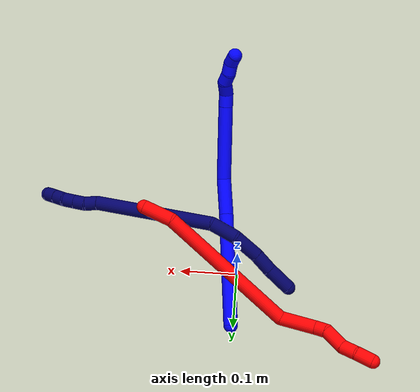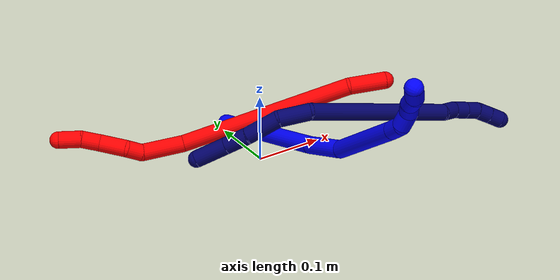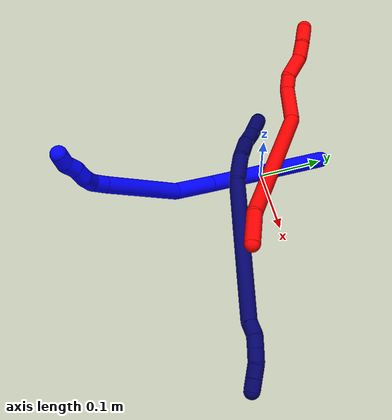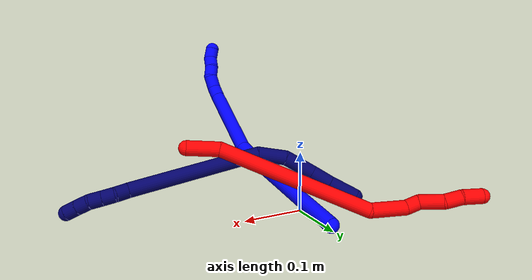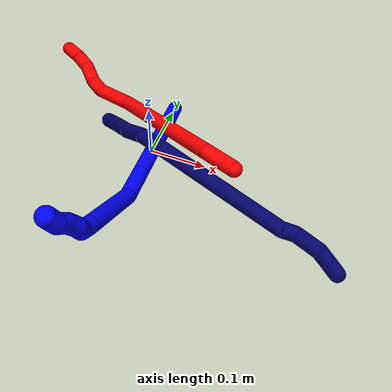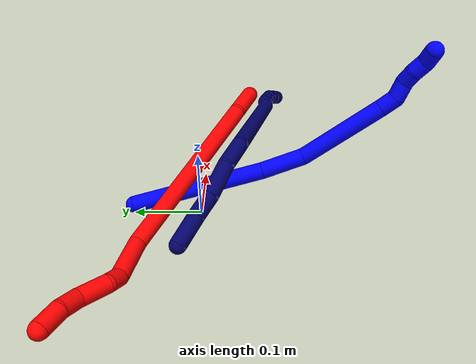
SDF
<sdf version="1.7">
 <world name="default">
  <model name="photoneo_s_sensor">
   <static>1</static>
   <pose>0 0 2 1.57079 1.57079 3.14159</pose>
   <link name="link">
    <inertial><mass>0.1</mass></inertial>
    <sensor name="sensor" type="depth">
     <update_rate>30</update_rate>
     <camera>
      <horizontal_fov>1.22</horizontal_fov>
      <image><width>1920</width><height>1200</height><format>B8G8R8</format></image>
      <clip><near>0.1</near><far>2</far></clip>
      <depth_camera><output>points</output></depth_camera>
     </camera>
     <plugin name="camera_plugin" filename="libgazebo_ros_depth_camera.so">
      <baseline>0.2</baseline>
      <alwaysOn>1</alwaysOn>
      <updateRate>0.0</updateRate>
      <cameraName>camera_ir</cameraName>
      <imageTopicName>/camera/color/image_raw</imageTopicName>
      <cameraInfoTopicName>/camera/color/camera_info</cameraInfoTopicName>
      <depthImageTopicName>/camera/depth/image_raw</depthImageTopicName>
      <depthImageCameraInfoTopicName>/camera/depth/camera_info</depthImageCameraInfoTopicName>
      <pointCloudTopicName>/camera/depth/points</pointCloudTopicName>
      <frameName>fr_optical</frameName>
      <pointCloudCutoff>0.1</pointCloudCutoff>
      <pointCloudCutoffMax>2.0</pointCloudCutoffMax>
      <distortionK1>0</distortionK1>
      <distortionK2>0</distortionK2>
      <distortionK3>0</distortionK3>
      <distortionT1>0</distortionT1>
      <distortionT2>0</distortionT2>
      <CxPrime>0</CxPrime>
      <Cx>0</Cx>
      <Cy>0</Cy>
      <focalLength>0</focalLength>
      <hackBaseline>0</hackBaseline>
     </plugin>
    </sensor>
   </link>
  </model>
  <model name="bin">
   <static>1</static>
   <link name="bottom">
    <collision name="collision-bottom">
     <pose>0 0 -0.01 0 -0 0</pose>
     <geometry><box><size>0.8 0.6 0.02</size></box></geometry>
     <surface>
      <friction><ode><mu>100</mu><mu2>100</mu2></ode></friction>
      <contact><collide_bitmask>65535</collide_bitmask></contact>
     </surface>
    </collision>
   </link>
   <link name="west_wall">
    <collision name="collision-west_wall">
     <pose>-0.41 0 0.1 0 -0 0</pose>
     <geometry><box><size>0.02 0.6 0.2</size></box></geometry>
     <surface>
      <friction><ode><mu>100</mu><mu2>100</mu2></ode></friction>
      <contact><collide_bitmask>65535</collide_bitmask></contact>
     </surface>
    </collision>
   </link>
   <link name="east_wall">
    <collision name="collision-east_wall">
     <pose>0.41 0 0.1 0 -0 0</pose>
     <geometry><box><size>0.02 0.6 0.2</size></box></geometry>
     <surface>
      <friction><ode><mu>100</mu><mu2>100</mu2></ode></friction>
      <contact><collide_bitmask>65535</collide_bitmask></contact>
     </surface>
    </collision>
   </link>
   <link name="south_wall">
    <collision name="collision-south_wall">
     <pose>0 -0.31 0.1 0 -0 0</pose>
     <geometry><box><size>0.8 0.02 0.2</size></box></geometry>
     <surface>
      <friction><ode><mu>100</mu><mu2>100</mu2></ode></friction>
      <contact><collide_bitmask>65535</collide_bitmask></contact>
     </surface>
    </collision>
   </link>
   <link name="north_wall">
    <collision name="collision-north_wall">
     <pose>0 0.31 0.1 0 -0 0</pose>
     <geometry><box><size>0.8 0.02 0.2</size></box></geometry>
     <surface>
      <friction><ode><mu>100</mu><mu2>100</mu2></ode></friction>
      <contact><collide_bitmask>65535</collide_bitmask></contact>
     </surface>
    </collision>
   </link>
  </model>
  <model name="1">
   <static>0</static>
   <link name="1">
    <collision name="collision-cylinder-e_1_1_4">
     <pose>0.005605 -0.043584 0.088507 0.457573 0.056751 0.013219</pose>
     <geometry><cylinder><radius>0.0125</radius><length>0.197631</length></cylinder></geometry>
     <surface>
      <friction><ode><mu>1.16</mu><mu2>1.16</mu2><slip1>0</slip1><slip2>0</slip2></ode></friction>
      <contact><ode><kp>1e+06</kp><kd>1</kd><max_vel>0</max_vel><min_depth>0.001</min_depth></ode></contact>
     </surface>
    </collision>
    <visual name="visual-cylinder-e_1_1_4">
     <pose>0.005605 -0.043584 0.088507 0.457573 0.056751 0.013219</pose>
     <geometry><cylinder><radius>0.0125</radius><length>0.197631</length></cylinder></geometry>
     <material><ambient>0 0 1 1</ambient></material>
    </visual>
    <collision name="collision-cylinder-e_2_4_5">
     <pose>0.0116 -0.103086 0.204728 0.521403 0.012227 0.003262</pose>
     <geometry><cylinder><radius>0.0125</radius><length>0.063925</length></cylinder></geometry>
     <surface>
      <friction><ode><mu>1.16</mu><mu2>1.16</mu2><slip1>0</slip1><slip2>0</slip2></ode></friction>
      <contact><ode><kp>1e+06</kp><kd>1</kd><max_vel>0</max_vel><min_depth>0.001</min_depth></ode></contact>
     </surface>
    </collision>
    <visual name="visual-cylinder-e_2_4_5">
     <pose>0.0116 -0.103086 0.204728 0.521403 0.012227 0.003262</pose>
     <geometry><cylinder><radius>0.0125</radius><length>0.063925</length></cylinder></geometry>
     <material><ambient>0 0 1 1</ambient></material>
    </visual>
    <collision name="collision-cylinder-e_3_5_6">
     <pose>0.012405 -0.168196 0.274987 0.857707 0.006362 0.002909</pose>
     <geometry><cylinder><radius>0.0125</radius><length>0.130078</length></cylinder></geometry>
     <surface>
      <friction><ode><mu>1.16</mu><mu2>1.16</mu2><slip1>0</slip1><slip2>0</slip2></ode></friction>
      <contact><ode><kp>1e+06</kp><kd>1</kd><max_vel>0</max_vel><min_depth>0.001</min_depth></ode></contact>
     </surface>
    </collision>
    <visual name="visual-cylinder-e_3_5_6">
     <pose>0.012405 -0.168196 0.274987 0.857707 0.006362 0.002909</pose>
     <geometry><cylinder><radius>0.0125</radius><length>0.130078</length></cylinder></geometry>
     <material><ambient>0 0 1 1</ambient></material>
    </visual>
    <collision name="collision-cylinder-e_4_6_7">
     <pose>0.012909 -0.226732 0.324757 0.912668 0.007678 0.003769</pose>
     <geometry><cylinder><radius>0.0125</radius><length>0.023624</length></cylinder></geometry>
     <surface>
      <friction><ode><mu>1.16</mu><mu2>1.16</mu2><slip1>0</slip1><slip2>0</slip2></ode></friction>
      <contact><ode><kp>1e+06</kp><kd>1</kd><max_vel>0</max_vel><min_depth>0.001</min_depth></ode></contact>
     </surface>
    </collision>
    <visual name="visual-cylinder-e_4_6_7">
     <pose>0.012909 -0.226732 0.324757 0.912668 0.007678 0.003769</pose>
     <geometry><cylinder><radius>0.0125</radius><length>0.023624</length></cylinder></geometry>
     <material><ambient>0 0 1 1</ambient></material>
    </visual>
    <collision name="collision-cylinder-e_5_7_8">
     <pose>0.009827 -0.247631 0.334619 1.34636 -0.261558 -0.209011</pose>
     <geometry><cylinder><radius>0.0125</radius><length>0.024539</length></cylinder></geometry>
     <surface>
      <friction><ode><mu>1.16</mu><mu2>1.16</mu2><slip1>0</slip1><slip2>0</slip2></ode></friction>
      <contact><ode><kp>1e+06</kp><kd>1</kd><max_vel>0</max_vel><min_depth>0.001</min_depth></ode></contact>
     </surface>
    </collision>
    <visual name="visual-cylinder-e_5_7_8">
     <pose>0.009827 -0.247631 0.334619 1.34636 -0.261558 -0.209011</pose>
     <geometry><cylinder><radius>0.0125</radius><length>0.024539</length></cylinder></geometry>
     <material><ambient>0 0 1 1</ambient></material>
    </visual>
    <collision name="collision-cylinder-e_6_8_9">
     <pose>0.008468 -0.268985 0.338785 1.4161 0.18087 0.154962</pose>
     <geometry><cylinder><radius>0.0125</radius><length>0.020163</length></cylinder></geometry>
     <surface>
      <friction><ode><mu>1.16</mu><mu2>1.16</mu2><slip1>0</slip1><slip2>0</slip2></ode></friction>
      <contact><ode><kp>1e+06</kp><kd>1</kd><max_vel>0</max_vel><min_depth>0.001</min_depth></ode></contact>
     </surface>
    </collision>
    <visual name="visual-cylinder-e_6_8_9">
     <pose>0.008468 -0.268985 0.338785 1.4161 0.18087 0.154962</pose>
     <geometry><cylinder><radius>0.0125</radius><length>0.020163</length></cylinder></geometry>
     <material><ambient>0 0 1 1</ambient></material>
    </visual>
    <collision name="collision-cylinder-e_7_9_10">
     <pose>0.011176 -0.287893 0.344382 1.15071 0.089415 0.058012</pose>
     <geometry><cylinder><radius>0.0125</radius><length>0.020035</length></cylinder></geometry>
     <surface>
      <friction><ode><mu>1.16</mu><mu2>1.16</mu2><slip1>0</slip1><slip2>0</slip2></ode></friction>
      <contact><ode><kp>1e+06</kp><kd>1</kd><max_vel>0</max_vel><min_depth>0.001</min_depth></ode></contact>
     </surface>
    </collision>
    <visual name="visual-cylinder-e_7_9_10">
     <pose>0.011176 -0.287893 0.344382 1.15071 0.089415 0.058012</pose>
     <geometry><cylinder><radius>0.0125</radius><length>0.020035</length></cylinder></geometry>
     <material><ambient>0 0 1 1</ambient></material>
    </visual>
    <collision name="collision-cylinder-e_8_10_2">
     <pose>0.013759 -0.306862 0.34852 1.56382 0.169615 0.168442</pose>
     <geometry><cylinder><radius>0.0125</radius><length>0.020006</length></cylinder></geometry>
     <surface>
      <friction><ode><mu>1.16</mu><mu2>1.16</mu2><slip1>0</slip1><slip2>0</slip2></ode></friction>
      <contact><ode><kp>1e+06</kp><kd>1</kd><max_vel>0</max_vel><min_depth>0.001</min_depth></ode></contact>
     </surface>
    </collision>
    <visual name="visual-cylinder-e_8_10_2">
     <pose>0.013759 -0.306862 0.34852 1.56382 0.169615 0.168442</pose>
     <geometry><cylinder><radius>0.0125</radius><length>0.020006</length></cylinder></geometry>
     <material><ambient>0 0 1 1</ambient></material>
    </visual>
    <collision name="collision-sphere-2">
     <pose>0.015448 -0.316722 0.348589 0 -0 0</pose>
     <geometry><sphere><radius>0.0125</radius></sphere></geometry>
     <surface>
      <friction><ode><mu>1.16</mu><mu2>1.16</mu2><slip1>0</slip1><slip2>0</slip2></ode></friction>
      <contact><ode><kp>1e+06</kp><kd>1</kd><max_vel>0</max_vel><min_depth>0.001</min_depth></ode></contact>
     </surface>
    </collision>
    <visual name="visual-sphere-2">
     <pose>0.015448 -0.316722 0.348589 0 -0 0</pose>
     <geometry><sphere><radius>0.0125</radius></sphere></geometry>
     <material><ambient>0 0 1 1</ambient></material>
    </visual>
    <collision name="collision-sphere-10">
     <pose>0.012071 -0.297003 0.348452 0 -0 0</pose>
     <geometry><sphere><radius>0.0125</radius></sphere></geometry>
     <surface>
      <friction><ode><mu>1.16</mu><mu2>1.16</mu2><slip1>0</slip1><slip2>0</slip2></ode></friction>
      <contact><ode><kp>1e+06</kp><kd>1</kd><max_vel>0</max_vel><min_depth>0.001</min_depth></ode></contact>
     </surface>
    </collision>
    <visual name="visual-sphere-10">
     <pose>0.012071 -0.297003 0.348452 0 -0 0</pose>
     <geometry><sphere><radius>0.0125</radius></sphere></geometry>
     <material><ambient>0 0 1 1</ambient></material>
    </visual>
    <collision name="collision-sphere-9">
     <pose>0.010282 -0.278783 0.340313 0 -0 0</pose>
     <geometry><sphere><radius>0.0125</radius></sphere></geometry>
     <surface>
      <friction><ode><mu>1.16</mu><mu2>1.16</mu2><slip1>0</slip1><slip2>0</slip2></ode></friction>
      <contact><ode><kp>1e+06</kp><kd>1</kd><max_vel>0</max_vel><min_depth>0.001</min_depth></ode></contact>
     </surface>
    </collision>
    <visual name="visual-sphere-9">
     <pose>0.010282 -0.278783 0.340313 0 -0 0</pose>
     <geometry><sphere><radius>0.0125</radius></sphere></geometry>
     <material><ambient>0 0 1 1</ambient></material>
    </visual>
    <collision name="collision-sphere-4">
     <pose>0.01121 -0.087167 0.177015 0 -0 0</pose>
     <geometry><sphere><radius>0.0125</radius></sphere></geometry>
     <surface>
      <friction><ode><mu>1.16</mu><mu2>1.16</mu2><slip1>0</slip1><slip2>0</slip2></ode></friction>
      <contact><ode><kp>1e+06</kp><kd>1</kd><max_vel>0</max_vel><min_depth>0.001</min_depth></ode></contact>
     </surface>
    </collision>
    <visual name="visual-sphere-4">
     <pose>0.01121 -0.087167 0.177015 0 -0 0</pose>
     <geometry><sphere><radius>0.0125</radius></sphere></geometry>
     <material><ambient>0 0 1 1</ambient></material>
    </visual>
    <collision name="collision-sphere-1">
     <geometry><sphere><radius>0.0125</radius></sphere></geometry>
     <surface>
      <friction><ode><mu>1.16</mu><mu2>1.16</mu2><slip1>0</slip1><slip2>0</slip2></ode></friction>
      <contact><ode><kp>1e+06</kp><kd>1</kd><max_vel>0</max_vel><min_depth>0.001</min_depth></ode></contact>
     </surface>
    </collision>
    <visual name="visual-sphere-1">
     <geometry><sphere><radius>0.0125</radius></sphere></geometry>
     <material><ambient>0 0 1 1</ambient></material>
    </visual>
    <collision name="collision-sphere-8">
     <pose>0.006655 -0.259186 0.337257 0 -0 0</pose>
     <geometry><sphere><radius>0.0125</radius></sphere></geometry>
     <surface>
      <friction><ode><mu>1.16</mu><mu2>1.16</mu2><slip1>0</slip1><slip2>0</slip2></ode></friction>
      <contact><ode><kp>1e+06</kp><kd>1</kd><max_vel>0</max_vel><min_depth>0.001</min_depth></ode></contact>
     </surface>
    </collision>
    <visual name="visual-sphere-8">
     <pose>0.006655 -0.259186 0.337257 0 -0 0</pose>
     <geometry><sphere><radius>0.0125</radius></sphere></geometry>
     <material><ambient>0 0 1 1</ambient></material>
    </visual>
    <collision name="collision-sphere-5">
     <pose>0.011991 -0.119005 0.232441 0 -0 0</pose>
     <geometry><sphere><radius>0.0125</radius></sphere></geometry>
     <surface>
      <friction><ode><mu>1.16</mu><mu2>1.16</mu2><slip1>0</slip1><slip2>0</slip2></ode></friction>
      <contact><ode><kp>1e+06</kp><kd>1</kd><max_vel>0</max_vel><min_depth>0.001</min_depth></ode></contact>
     </surface>
    </collision>
    <visual name="visual-sphere-5">
     <pose>0.011991 -0.119005 0.232441 0 -0 0</pose>
     <geometry><sphere><radius>0.0125</radius></sphere></geometry>
     <material><ambient>0 0 1 1</ambient></material>
    </visual>
    <collision name="collision-sphere-6">
     <pose>0.012819 -0.217387 0.317533 0 -0 0</pose>
     <geometry><sphere><radius>0.0125</radius></sphere></geometry>
     <surface>
      <friction><ode><mu>1.16</mu><mu2>1.16</mu2><slip1>0</slip1><slip2>0</slip2></ode></friction>
      <contact><ode><kp>1e+06</kp><kd>1</kd><max_vel>0</max_vel><min_depth>0.001</min_depth></ode></contact>
     </surface>
    </collision>
    <visual name="visual-sphere-6">
     <pose>0.012819 -0.217387 0.317533 0 -0 0</pose>
     <geometry><sphere><radius>0.0125</radius></sphere></geometry>
     <material><ambient>0 0 1 1</ambient></material>
    </visual>
    <collision name="collision-sphere-7">
     <pose>0.013 -0.236077 0.331982 0 -0 0</pose>
     <geometry><sphere><radius>0.0125</radius></sphere></geometry>
     <surface>
      <friction><ode><mu>1.16</mu><mu2>1.16</mu2><slip1>0</slip1><slip2>0</slip2></ode></friction>
      <contact><ode><kp>1e+06</kp><kd>1</kd><max_vel>0</max_vel><min_depth>0.001</min_depth></ode></contact>
     </surface>
    </collision>
    <visual name="visual-sphere-7">
     <pose>0.013 -0.236077 0.331982 0 -0 0</pose>
     <geometry><sphere><radius>0.0125</radius></sphere></geometry>
     <material><ambient>0 0 1 1</ambient></material>
    </visual>
    <inertial>
     <pose>0.009358 -0.13169 0.20587 0 -0 0</pose>
     <mass>0.5</mass>
     <inertia>
      <ixx>0.000882</ixx>
      <ixy>0</ixy>
      <ixz>0</ixz>
      <iyy>0.000716</iyy>
      <iyz>0</iyz>
      <izz>0.000438</izz>
     </inertia>
    </inertial>
   </link>
   <pose>0.004101 0.100392 0.012304 -1.7726 0.231234 -2.91738</pose>
  </model>
  <model name="2">
   <static>0</static>
   <link name="2">
    <collision name="collision-cylinder-e_1_1_4">
     <pose>-0.001919 -0.000688 0.026696 0.025771 -0.071733 -0.000925</pose>
     <geometry><cylinder><radius>0.0125</radius><length>0.053548</length></cylinder></geometry>
     <surface>
      <friction><ode><mu>1.16</mu><mu2>1.16</mu2><slip1>0</slip1><slip2>0</slip2></ode></friction>
      <contact><ode><kp>1e+06</kp><kd>1</kd><max_vel>0</max_vel><min_depth>0.001</min_depth></ode></contact>
     </surface>
    </collision>
    <visual name="visual-cylinder-e_1_1_4">
     <pose>-0.001919 -0.000688 0.026696 0.025771 -0.071733 -0.000925</pose>
     <geometry><cylinder><radius>0.0125</radius><length>0.053548</length></cylinder></geometry>
     <material><ambient>1 0 0 1</ambient></material>
    </visual>
    <collision name="collision-cylinder-e_2_4_5">
     <pose>-0.028869 0.039243 0.173476 -0.326175 -0.194951 0.032178</pose>
     <geometry><cylinder><radius>0.0125</radius><length>0.258431</length></cylinder></geometry>
     <surface>
      <friction><ode><mu>1.16</mu><mu2>1.16</mu2><slip1>0</slip1><slip2>0</slip2></ode></friction>
      <contact><ode><kp>1e+06</kp><kd>1</kd><max_vel>0</max_vel><min_depth>0.001</min_depth></ode></contact>
     </surface>
    </collision>
    <visual name="visual-cylinder-e_2_4_5">
     <pose>-0.028869 0.039243 0.173476 -0.326175 -0.194951 0.032178</pose>
     <geometry><cylinder><radius>0.0125</radius><length>0.258431</length></cylinder></geometry>
     <material><ambient>1 0 0 1</ambient></material>
    </visual>
    <collision name="collision-cylinder-e_3_5_6">
     <pose>-0.058161 0.073931 0.324587 0.18889 -0.134073 -0.012719</pose>
     <geometry><cylinder><radius>0.0125</radius><length>0.063749</length></cylinder></geometry>
     <surface>
      <friction><ode><mu>1.16</mu><mu2>1.16</mu2><slip1>0</slip1><slip2>0</slip2></ode></friction>
      <contact><ode><kp>1e+06</kp><kd>1</kd><max_vel>0</max_vel><min_depth>0.001</min_depth></ode></contact>
     </surface>
    </collision>
    <visual name="visual-cylinder-e_3_5_6">
     <pose>-0.058161 0.073931 0.324587 0.18889 -0.134073 -0.012719</pose>
     <geometry><cylinder><radius>0.0125</radius><length>0.063749</length></cylinder></geometry>
     <material><ambient>1 0 0 1</ambient></material>
    </visual>
    <collision name="collision-cylinder-e_4_6_7">
     <pose>-0.058785 0.064869 0.366249 0.286298 0.317004 0.04607</pose>
     <geometry><cylinder><radius>0.0125</radius><length>0.023337</length></cylinder></geometry>
     <surface>
      <friction><ode><mu>1.16</mu><mu2>1.16</mu2><slip1>0</slip1><slip2>0</slip2></ode></friction>
      <contact><ode><kp>1e+06</kp><kd>1</kd><max_vel>0</max_vel><min_depth>0.001</min_depth></ode></contact>
     </surface>
    </collision>
    <visual name="visual-cylinder-e_4_6_7">
     <pose>-0.058785 0.064869 0.366249 0.286298 0.317004 0.04607</pose>
     <geometry><cylinder><radius>0.0125</radius><length>0.023337</length></cylinder></geometry>
     <material><ambient>1 0 0 1</ambient></material>
    </visual>
    <collision name="collision-cylinder-e_5_7_8">
     <pose>-0.048575 0.065769 0.395602 -0.212131 0.330642 -0.035522</pose>
     <geometry><cylinder><radius>0.0125</radius><length>0.040486</length></cylinder></geometry>
     <surface>
      <friction><ode><mu>1.16</mu><mu2>1.16</mu2><slip1>0</slip1><slip2>0</slip2></ode></friction>
      <contact><ode><kp>1e+06</kp><kd>1</kd><max_vel>0</max_vel><min_depth>0.001</min_depth></ode></contact>
     </surface>
    </collision>
    <visual name="visual-cylinder-e_5_7_8">
     <pose>-0.048575 0.065769 0.395602 -0.212131 0.330642 -0.035522</pose>
     <geometry><cylinder><radius>0.0125</radius><length>0.040486</length></cylinder></geometry>
     <material><ambient>1 0 0 1</ambient></material>
    </visual>
    <collision name="collision-cylinder-e_6_8_9">
     <pose>-0.038167 0.067947 0.427633 0.138282 0.278048 0.01938</pose>
     <geometry><cylinder><radius>0.0125</radius><length>0.027957</length></cylinder></geometry>
     <surface>
      <friction><ode><mu>1.16</mu><mu2>1.16</mu2><slip1>0</slip1><slip2>0</slip2></ode></friction>
      <contact><ode><kp>1e+06</kp><kd>1</kd><max_vel>0</max_vel><min_depth>0.001</min_depth></ode></contact>
     </surface>
    </collision>
    <visual name="visual-cylinder-e_6_8_9">
     <pose>-0.038167 0.067947 0.427633 0.138282 0.278048 0.01938</pose>
     <geometry><cylinder><radius>0.0125</radius><length>0.027957</length></cylinder></geometry>
     <material><ambient>1 0 0 1</ambient></material>
    </visual>
    <collision name="collision-cylinder-e_7_9_2">
     <pose>-0.033447 0.065468 0.457156 0.038614 0.054362 0.00105</pose>
     <geometry><cylinder><radius>0.0125</radius><length>0.032493</length></cylinder></geometry>
     <surface>
      <friction><ode><mu>1.16</mu><mu2>1.16</mu2><slip1>0</slip1><slip2>0</slip2></ode></friction>
      <contact><ode><kp>1e+06</kp><kd>1</kd><max_vel>0</max_vel><min_depth>0.001</min_depth></ode></contact>
     </surface>
    </collision>
    <visual name="visual-cylinder-e_7_9_2">
     <pose>-0.033447 0.065468 0.457156 0.038614 0.054362 0.00105</pose>
     <geometry><cylinder><radius>0.0125</radius><length>0.032493</length></cylinder></geometry>
     <material><ambient>1 0 0 1</ambient></material>
    </visual>
    <collision name="collision-sphere-2">
     <pose>-0.032565 0.064842 0.473366 0 -0 0</pose>
     <geometry><sphere><radius>0.0125</radius></sphere></geometry>
     <surface>
      <friction><ode><mu>1.16</mu><mu2>1.16</mu2><slip1>0</slip1><slip2>0</slip2></ode></friction>
      <contact><ode><kp>1e+06</kp><kd>1</kd><max_vel>0</max_vel><min_depth>0.001</min_depth></ode></contact>
     </surface>
    </collision>
    <visual name="visual-sphere-2">
     <pose>-0.032565 0.064842 0.473366 0 -0 0</pose>
     <geometry><sphere><radius>0.0125</radius></sphere></geometry>
     <material><ambient>1 0 0 1</ambient></material>
    </visual>
    <collision name="collision-sphere-9">
     <pose>-0.03433 0.066094 0.440946 0 -0 0</pose>
     <geometry><sphere><radius>0.0125</radius></sphere></geometry>
     <surface>
      <friction><ode><mu>1.16</mu><mu2>1.16</mu2><slip1>0</slip1><slip2>0</slip2></ode></friction>
      <contact><ode><kp>1e+06</kp><kd>1</kd><max_vel>0</max_vel><min_depth>0.001</min_depth></ode></contact>
     </surface>
    </collision>
    <visual name="visual-sphere-9">
     <pose>-0.03433 0.066094 0.440946 0 -0 0</pose>
     <geometry><sphere><radius>0.0125</radius></sphere></geometry>
     <material><ambient>1 0 0 1</ambient></material>
    </visual>
    <collision name="collision-sphere-4">
     <pose>-0.003838 -0.001376 0.053392 0 -0 0</pose>
     <geometry><sphere><radius>0.0125</radius></sphere></geometry>
     <surface>
      <friction><ode><mu>1.16</mu><mu2>1.16</mu2><slip1>0</slip1><slip2>0</slip2></ode></friction>
      <contact><ode><kp>1e+06</kp><kd>1</kd><max_vel>0</max_vel><min_depth>0.001</min_depth></ode></contact>
     </surface>
    </collision>
    <visual name="visual-sphere-4">
     <pose>-0.003838 -0.001376 0.053392 0 -0 0</pose>
     <geometry><sphere><radius>0.0125</radius></sphere></geometry>
     <material><ambient>1 0 0 1</ambient></material>
    </visual>
    <collision name="collision-sphere-1">
     <geometry><sphere><radius>0.0125</radius></sphere></geometry>
     <surface>
      <friction><ode><mu>1.16</mu><mu2>1.16</mu2><slip1>0</slip1><slip2>0</slip2></ode></friction>
      <contact><ode><kp>1e+06</kp><kd>1</kd><max_vel>0</max_vel><min_depth>0.001</min_depth></ode></contact>
     </surface>
    </collision>
    <visual name="visual-sphere-1">
     <geometry><sphere><radius>0.0125</radius></sphere></geometry>
     <material><ambient>1 0 0 1</ambient></material>
    </visual>
    <collision name="collision-sphere-8">
     <pose>-0.042004 0.0698 0.41432 0 -0 0</pose>
     <geometry><sphere><radius>0.0125</radius></sphere></geometry>
     <surface>
      <friction><ode><mu>1.16</mu><mu2>1.16</mu2><slip1>0</slip1><slip2>0</slip2></ode></friction>
      <contact><ode><kp>1e+06</kp><kd>1</kd><max_vel>0</max_vel><min_depth>0.001</min_depth></ode></contact>
     </surface>
    </collision>
    <visual name="visual-sphere-8">
     <pose>-0.042004 0.0698 0.41432 0 -0 0</pose>
     <geometry><sphere><radius>0.0125</radius></sphere></geometry>
     <material><ambient>1 0 0 1</ambient></material>
    </visual>
    <collision name="collision-sphere-5">
     <pose>-0.053901 0.079862 0.293561 0 -0 0</pose>
     <geometry><sphere><radius>0.0125</radius></sphere></geometry>
     <surface>
      <friction><ode><mu>1.16</mu><mu2>1.16</mu2><slip1>0</slip1><slip2>0</slip2></ode></friction>
      <contact><ode><kp>1e+06</kp><kd>1</kd><max_vel>0</max_vel><min_depth>0.001</min_depth></ode></contact>
     </surface>
    </collision>
    <visual name="visual-sphere-5">
     <pose>-0.053901 0.079862 0.293561 0 -0 0</pose>
     <geometry><sphere><radius>0.0125</radius></sphere></geometry>
     <material><ambient>1 0 0 1</ambient></material>
    </visual>
    <collision name="collision-sphere-6">
     <pose>-0.062422 0.068 0.355613 0 -0 0</pose>
     <geometry><sphere><radius>0.0125</radius></sphere></geometry>
     <surface>
      <friction><ode><mu>1.16</mu><mu2>1.16</mu2><slip1>0</slip1><slip2>0</slip2></ode></friction>
      <contact><ode><kp>1e+06</kp><kd>1</kd><max_vel>0</max_vel><min_depth>0.001</min_depth></ode></contact>
     </surface>
    </collision>
    <visual name="visual-sphere-6">
     <pose>-0.062422 0.068 0.355613 0 -0 0</pose>
     <geometry><sphere><radius>0.0125</radius></sphere></geometry>
     <material><ambient>1 0 0 1</ambient></material>
    </visual>
    <collision name="collision-sphere-7">
     <pose>-0.055147 0.061737 0.376885 0 -0 0</pose>
     <geometry><sphere><radius>0.0125</radius></sphere></geometry>
     <surface>
      <friction><ode><mu>1.16</mu><mu2>1.16</mu2><slip1>0</slip1><slip2>0</slip2></ode></friction>
      <contact><ode><kp>1e+06</kp><kd>1</kd><max_vel>0</max_vel><min_depth>0.001</min_depth></ode></contact>
     </surface>
    </collision>
    <visual name="visual-sphere-7">
     <pose>-0.055147 0.061737 0.376885 0 -0 0</pose>
     <geometry><sphere><radius>0.0125</radius></sphere></geometry>
     <material><ambient>1 0 0 1</ambient></material>
    </visual>
    <inertial>
     <pose>-0.033527 0.046042 0.236652 0 -0 0</pose>
     <mass>0.5</mass>
     <inertia>
      <ixx>0.001517</ixx>
      <ixy>0</ixy>
      <ixz>0</ixz>
      <iyy>0.001479</iyy>
      <iyz>0</iyz>
      <izz>-0.000133</izz>
     </inertia>
    </inertial>
   </link>
   <pose>0.167825 -0.072355 0.111537 -1.61716 -0.945583 1.17309</pose>
  </model>
  <model name="7">
   <static>0</static>
   <link name="7">
    <collision name="collision-cylinder-e_1_1_4">
     <pose>-3.5e-05 2.2e-05 0.024087 -0.000903 -0.001441 1e-06</pose>
     <geometry><cylinder><radius>0.0125</radius><length>0.048174</length></cylinder></geometry>
     <surface>
      <friction><ode><mu>1.16</mu><mu2>1.16</mu2><slip1>0</slip1><slip2>0</slip2></ode></friction>
      <contact><ode><kp>1e+06</kp><kd>1</kd><max_vel>0</max_vel><min_depth>0.001</min_depth></ode></contact>
     </surface>
    </collision>
    <visual name="visual-cylinder-e_1_1_4">
     <pose>-3.5e-05 2.2e-05 0.024087 -0.000903 -0.001441 1e-06</pose>
     <geometry><cylinder><radius>0.0125</radius><length>0.048174</length></cylinder></geometry>
     <material><ambient>0.003922 0 0.403922 1</ambient></material>
    </visual>
    <collision name="collision-cylinder-e_2_4_5">
     <pose>-0.001276 -0.000567 0.065485 0.035231 -0.069522 -0.001225</pose>
     <geometry><cylinder><radius>0.0125</radius><length>0.034729</length></cylinder></geometry>
     <surface>
      <friction><ode><mu>1.16</mu><mu2>1.16</mu2><slip1>0</slip1><slip2>0</slip2></ode></friction>
      <contact><ode><kp>1e+06</kp><kd>1</kd><max_vel>0</max_vel><min_depth>0.001</min_depth></ode></contact>
     </surface>
    </collision>
    <visual name="visual-cylinder-e_2_4_5">
     <pose>-0.001276 -0.000567 0.065485 0.035231 -0.069522 -0.001225</pose>
     <geometry><cylinder><radius>0.0125</radius><length>0.034729</length></cylinder></geometry>
     <material><ambient>0.003922 0 0.403922 1</ambient></material>
    </visual>
    <collision name="collision-cylinder-e_3_5_6">
     <pose>-0.002678 0.001108 0.108175 -0.089801 -0.007684 0.000345</pose>
     <geometry><cylinder><radius>0.0125</radius><length>0.050963</length></cylinder></geometry>
     <surface>
      <friction><ode><mu>1.16</mu><mu2>1.16</mu2><slip1>0</slip1><slip2>0</slip2></ode></friction>
      <contact><ode><kp>1e+06</kp><kd>1</kd><max_vel>0</max_vel><min_depth>0.001</min_depth></ode></contact>
     </surface>
    </collision>
    <visual name="visual-cylinder-e_3_5_6">
     <pose>-0.002678 0.001108 0.108175 -0.089801 -0.007684 0.000345</pose>
     <geometry><cylinder><radius>0.0125</radius><length>0.050963</length></cylinder></geometry>
     <material><ambient>0.003922 0 0.403922 1</ambient></material>
    </visual>
    <collision name="collision-cylinder-e_4_6_7">
     <pose>0.005026 0.002774 0.155587 0.028087 0.344088 0.004881</pose>
     <geometry><cylinder><radius>0.0125</radius><length>0.046832</length></cylinder></geometry>
     <surface>
      <friction><ode><mu>1.16</mu><mu2>1.16</mu2><slip1>0</slip1><slip2>0</slip2></ode></friction>
      <contact><ode><kp>1e+06</kp><kd>1</kd><max_vel>0</max_vel><min_depth>0.001</min_depth></ode></contact>
     </surface>
    </collision>
    <visual name="visual-cylinder-e_4_6_7">
     <pose>0.005026 0.002774 0.155587 0.028087 0.344088 0.004881</pose>
     <geometry><cylinder><radius>0.0125</radius><length>0.046832</length></cylinder></geometry>
     <material><ambient>0.003922 0 0.403922 1</ambient></material>
    </visual>
    <collision name="collision-cylinder-e_5_7_8">
     <pose>0.087922 0.000757 0.255966 0.017848 0.763494 0.007165</pose>
     <geometry><cylinder><radius>0.0125</radius><length>0.216927</length></cylinder></geometry>
     <surface>
      <friction><ode><mu>1.16</mu><mu2>1.16</mu2><slip1>0</slip1><slip2>0</slip2></ode></friction>
      <contact><ode><kp>1e+06</kp><kd>1</kd><max_vel>0</max_vel><min_depth>0.001</min_depth></ode></contact>
     </surface>
    </collision>
    <visual name="visual-cylinder-e_5_7_8">
     <pose>0.087922 0.000757 0.255966 0.017848 0.763494 0.007165</pose>
     <geometry><cylinder><radius>0.0125</radius><length>0.216927</length></cylinder></geometry>
     <material><ambient>0.003922 0 0.403922 1</ambient></material>
    </visual>
    <collision name="collision-cylinder-e_6_8_9">
     <pose>0.170845 0.002325 0.341055 -0.414356 0.821857 -0.182668</pose>
     <geometry><cylinder><radius>0.0125</radius><length>0.021643</length></cylinder></geometry>
     <surface>
      <friction><ode><mu>1.16</mu><mu2>1.16</mu2><slip1>0</slip1><slip2>0</slip2></ode></friction>
      <contact><ode><kp>1e+06</kp><kd>1</kd><max_vel>0</max_vel><min_depth>0.001</min_depth></ode></contact>
     </surface>
    </collision>
    <visual name="visual-cylinder-e_6_8_9">
     <pose>0.170845 0.002325 0.341055 -0.414356 0.821857 -0.182668</pose>
     <geometry><cylinder><radius>0.0125</radius><length>0.021643</length></cylinder></geometry>
     <material><ambient>0.003922 0 0.403922 1</ambient></material>
    </visual>
    <collision name="collision-cylinder-e_7_9_10">
     <pose>0.185801 0.004899 0.355142 0.053414 0.762989 0.021431</pose>
     <geometry><cylinder><radius>0.0125</radius><length>0.020347</length></cylinder></geometry>
     <surface>
      <friction><ode><mu>1.16</mu><mu2>1.16</mu2><slip1>0</slip1><slip2>0</slip2></ode></friction>
      <contact><ode><kp>1e+06</kp><kd>1</kd><max_vel>0</max_vel><min_depth>0.001</min_depth></ode></contact>
     </surface>
    </collision>
    <visual name="visual-cylinder-e_7_9_10">
     <pose>0.185801 0.004899 0.355142 0.053414 0.762989 0.021431</pose>
     <geometry><cylinder><radius>0.0125</radius><length>0.020347</length></cylinder></geometry>
     <material><ambient>0.003922 0 0.403922 1</ambient></material>
    </visual>
    <collision name="collision-cylinder-e_8_10_11">
     <pose>0.199675 0.004016 0.369831 0.066629 0.748888 0.026192</pose>
     <geometry><cylinder><radius>0.0125</radius><length>0.020103</length></cylinder></geometry>
     <surface>
      <friction><ode><mu>1.16</mu><mu2>1.16</mu2><slip1>0</slip1><slip2>0</slip2></ode></friction>
      <contact><ode><kp>1e+06</kp><kd>1</kd><max_vel>0</max_vel><min_depth>0.001</min_depth></ode></contact>
     </surface>
    </collision>
    <visual name="visual-cylinder-e_8_10_11">
     <pose>0.199675 0.004016 0.369831 0.066629 0.748888 0.026192</pose>
     <geometry><cylinder><radius>0.0125</radius><length>0.020103</length></cylinder></geometry>
     <material><ambient>0.003922 0 0.403922 1</ambient></material>
    </visual>
    <collision name="collision-cylinder-e_9_11_12">
     <pose>0.213898 0.000257 0.383281 0.491593 0.817239 0.2164</pose>
     <geometry><cylinder><radius>0.0125</radius><length>0.020239</length></cylinder></geometry>
     <surface>
      <friction><ode><mu>1.16</mu><mu2>1.16</mu2><slip1>0</slip1><slip2>0</slip2></ode></friction>
      <contact><ode><kp>1e+06</kp><kd>1</kd><max_vel>0</max_vel><min_depth>0.001</min_depth></ode></contact>
     </surface>
    </collision>
    <visual name="visual-cylinder-e_9_11_12">
     <pose>0.213898 0.000257 0.383281 0.491593 0.817239 0.2164</pose>
     <geometry><cylinder><radius>0.0125</radius><length>0.020239</length></cylinder></geometry>
     <material><ambient>0.003922 0 0.403922 1</ambient></material>
    </visual>
    <collision name="collision-cylinder-e_10_12_2">
     <pose>0.22871 -0.006349 0.395221 0.519516 0.835418 0.23482</pose>
     <geometry><cylinder><radius>0.0125</radius><length>0.020044</length></cylinder></geometry>
     <surface>
      <friction><ode><mu>1.16</mu><mu2>1.16</mu2><slip1>0</slip1><slip2>0</slip2></ode></friction>
      <contact><ode><kp>1e+06</kp><kd>1</kd><max_vel>0</max_vel><min_depth>0.001</min_depth></ode></contact>
     </surface>
    </collision>
    <visual name="visual-cylinder-e_10_12_2">
     <pose>0.22871 -0.006349 0.395221 0.519516 0.835418 0.23482</pose>
     <geometry><cylinder><radius>0.0125</radius><length>0.020044</length></cylinder></geometry>
     <material><ambient>0.003922 0 0.403922 1</ambient></material>
    </visual>
    <collision name="collision-sphere-2">
     <pose>0.236142 -0.009687 0.401057 0 -0 0</pose>
     <geometry><sphere><radius>0.0125</radius></sphere></geometry>
     <surface>
      <friction><ode><mu>1.16</mu><mu2>1.16</mu2><slip1>0</slip1><slip2>0</slip2></ode></friction>
      <contact><ode><kp>1e+06</kp><kd>1</kd><max_vel>0</max_vel><min_depth>0.001</min_depth></ode></contact>
     </surface>
    </collision>
    <visual name="visual-sphere-2">
     <pose>0.236142 -0.009687 0.401057 0 -0 0</pose>
     <geometry><sphere><radius>0.0125</radius></sphere></geometry>
     <material><ambient>0.003922 0 0.403922 1</ambient></material>
    </visual>
    <collision name="collision-sphere-12">
     <pose>0.221278 -0.003011 0.389385 0 -0 0</pose>
     <geometry><sphere><radius>0.0125</radius></sphere></geometry>
     <surface>
      <friction><ode><mu>1.16</mu><mu2>1.16</mu2><slip1>0</slip1><slip2>0</slip2></ode></friction>
      <contact><ode><kp>1e+06</kp><kd>1</kd><max_vel>0</max_vel><min_depth>0.001</min_depth></ode></contact>
     </surface>
    </collision>
    <visual name="visual-sphere-12">
     <pose>0.221278 -0.003011 0.389385 0 -0 0</pose>
     <geometry><sphere><radius>0.0125</radius></sphere></geometry>
     <material><ambient>0.003922 0 0.403922 1</ambient></material>
    </visual>
    <collision name="collision-sphere-11">
     <pose>0.206519 0.003526 0.377176 0 -0 0</pose>
     <geometry><sphere><radius>0.0125</radius></sphere></geometry>
     <surface>
      <friction><ode><mu>1.16</mu><mu2>1.16</mu2><slip1>0</slip1><slip2>0</slip2></ode></friction>
      <contact><ode><kp>1e+06</kp><kd>1</kd><max_vel>0</max_vel><min_depth>0.001</min_depth></ode></contact>
     </surface>
    </collision>
    <visual name="visual-sphere-11">
     <pose>0.206519 0.003526 0.377176 0 -0 0</pose>
     <geometry><sphere><radius>0.0125</radius></sphere></geometry>
     <material><ambient>0.003922 0 0.403922 1</ambient></material>
    </visual>
    <collision name="collision-sphere-10">
     <pose>0.192832 0.004506 0.362485 0 -0 0</pose>
     <geometry><sphere><radius>0.0125</radius></sphere></geometry>
     <surface>
      <friction><ode><mu>1.16</mu><mu2>1.16</mu2><slip1>0</slip1><slip2>0</slip2></ode></friction>
      <contact><ode><kp>1e+06</kp><kd>1</kd><max_vel>0</max_vel><min_depth>0.001</min_depth></ode></contact>
     </surface>
    </collision>
    <visual name="visual-sphere-10">
     <pose>0.192832 0.004506 0.362485 0 -0 0</pose>
     <geometry><sphere><radius>0.0125</radius></sphere></geometry>
     <material><ambient>0.003922 0 0.403922 1</ambient></material>
    </visual>
    <collision name="collision-sphere-9">
     <pose>0.17877 0.005291 0.347799 0 -0 0</pose>
     <geometry><sphere><radius>0.0125</radius></sphere></geometry>
     <surface>
      <friction><ode><mu>1.16</mu><mu2>1.16</mu2><slip1>0</slip1><slip2>0</slip2></ode></friction>
      <contact><ode><kp>1e+06</kp><kd>1</kd><max_vel>0</max_vel><min_depth>0.001</min_depth></ode></contact>
     </surface>
    </collision>
    <visual name="visual-sphere-9">
     <pose>0.17877 0.005291 0.347799 0 -0 0</pose>
     <geometry><sphere><radius>0.0125</radius></sphere></geometry>
     <material><ambient>0.003922 0 0.403922 1</ambient></material>
    </visual>
    <collision name="collision-sphere-4">
     <pose>-6.9e-05 4.3e-05 0.048174 0 -0 0</pose>
     <geometry><sphere><radius>0.0125</radius></sphere></geometry>
     <surface>
      <friction><ode><mu>1.16</mu><mu2>1.16</mu2><slip1>0</slip1><slip2>0</slip2></ode></friction>
      <contact><ode><kp>1e+06</kp><kd>1</kd><max_vel>0</max_vel><min_depth>0.001</min_depth></ode></contact>
     </surface>
    </collision>
    <visual name="visual-sphere-4">
     <pose>-6.9e-05 4.3e-05 0.048174 0 -0 0</pose>
     <geometry><sphere><radius>0.0125</radius></sphere></geometry>
     <material><ambient>0.003922 0 0.403922 1</ambient></material>
    </visual>
    <collision name="collision-sphere-1">
     <geometry><sphere><radius>0.0125</radius></sphere></geometry>
     <surface>
      <friction><ode><mu>1.16</mu><mu2>1.16</mu2><slip1>0</slip1><slip2>0</slip2></ode></friction>
      <contact><ode><kp>1e+06</kp><kd>1</kd><max_vel>0</max_vel><min_depth>0.001</min_depth></ode></contact>
     </surface>
    </collision>
    <visual name="visual-sphere-1">
     <geometry><sphere><radius>0.0125</radius></sphere></geometry>
     <material><ambient>0.003922 0 0.403922 1</ambient></material>
    </visual>
    <collision name="collision-sphere-8">
     <pose>0.162919 -0.000642 0.33431 0 -0 0</pose>
     <geometry><sphere><radius>0.0125</radius></sphere></geometry>
     <surface>
      <friction><ode><mu>1.16</mu><mu2>1.16</mu2><slip1>0</slip1><slip2>0</slip2></ode></friction>
      <contact><ode><kp>1e+06</kp><kd>1</kd><max_vel>0</max_vel><min_depth>0.001</min_depth></ode></contact>
     </surface>
    </collision>
    <visual name="visual-sphere-8">
     <pose>0.162919 -0.000642 0.33431 0 -0 0</pose>
     <geometry><sphere><radius>0.0125</radius></sphere></geometry>
     <material><ambient>0.003922 0 0.403922 1</ambient></material>
    </visual>
    <collision name="collision-sphere-5">
     <pose>-0.002482 -0.001177 0.082797 0 -0 0</pose>
     <geometry><sphere><radius>0.0125</radius></sphere></geometry>
     <surface>
      <friction><ode><mu>1.16</mu><mu2>1.16</mu2><slip1>0</slip1><slip2>0</slip2></ode></friction>
      <contact><ode><kp>1e+06</kp><kd>1</kd><max_vel>0</max_vel><min_depth>0.001</min_depth></ode></contact>
     </surface>
    </collision>
    <visual name="visual-sphere-5">
     <pose>-0.002482 -0.001177 0.082797 0 -0 0</pose>
     <geometry><sphere><radius>0.0125</radius></sphere></geometry>
     <material><ambient>0.003922 0 0.403922 1</ambient></material>
    </visual>
    <collision name="collision-sphere-6">
     <pose>-0.002873 0.003393 0.133553 0 -0 0</pose>
     <geometry><sphere><radius>0.0125</radius></sphere></geometry>
     <surface>
      <friction><ode><mu>1.16</mu><mu2>1.16</mu2><slip1>0</slip1><slip2>0</slip2></ode></friction>
      <contact><ode><kp>1e+06</kp><kd>1</kd><max_vel>0</max_vel><min_depth>0.001</min_depth></ode></contact>
     </surface>
    </collision>
    <visual name="visual-sphere-6">
     <pose>-0.002873 0.003393 0.133553 0 -0 0</pose>
     <geometry><sphere><radius>0.0125</radius></sphere></geometry>
     <material><ambient>0.003922 0 0.403922 1</ambient></material>
    </visual>
    <collision name="collision-sphere-7">
     <pose>0.012925 0.002155 0.177622 0 -0 0</pose>
     <geometry><sphere><radius>0.0125</radius></sphere></geometry>
     <surface>
      <friction><ode><mu>1.16</mu><mu2>1.16</mu2><slip1>0</slip1><slip2>0</slip2></ode></friction>
      <contact><ode><kp>1e+06</kp><kd>1</kd><max_vel>0</max_vel><min_depth>0.001</min_depth></ode></contact>
     </surface>
    </collision>
    <visual name="visual-sphere-7">
     <pose>0.012925 0.002155 0.177622 0 -0 0</pose>
     <geometry><sphere><radius>0.0125</radius></sphere></geometry>
     <material><ambient>0.003922 0 0.403922 1</ambient></material>
    </visual>
    <inertial>
     <pose>0.079062 0.000881 0.218962 0 -0 0</pose>
     <mass>0.5</mass>
     <inertia>
      <ixx>0.000688</ixx>
      <ixy>0</ixy>
      <ixz>0</ixz>
      <iyy>0.00091</iyy>
      <iyz>0</iyz>
      <izz>-0.00056</izz>
     </inertia>
    </inertial>
   </link>
   <pose>-0.0928 0.02438 0.017739 0.803497 0.857913 0.358658</pose>
  </model>
 </world>
</sdf>
